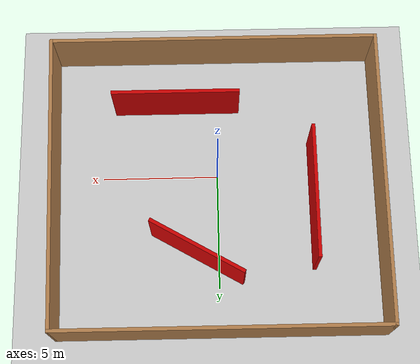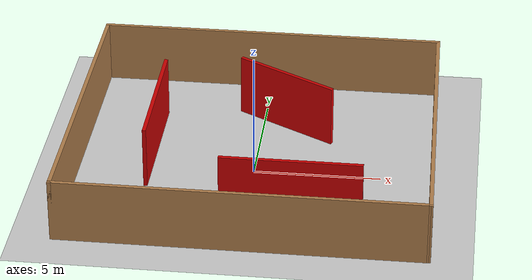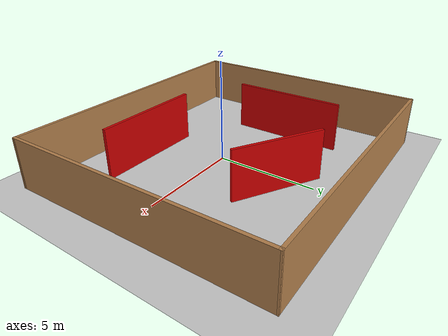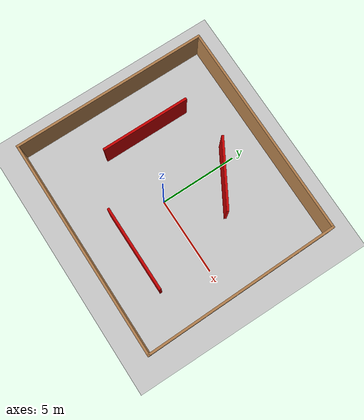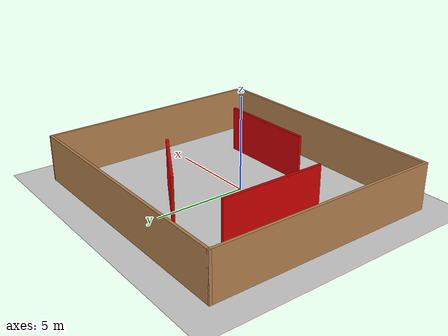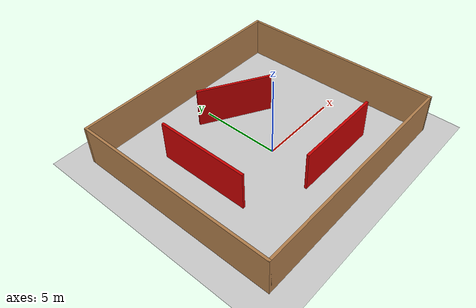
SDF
<sdf version="1.7">
 <world name="default">
  <light name="sun" type="directional">
   <pose>0 0 10 0 -0 0</pose>
   <diffuse>0.8 0.8 0.8 1</diffuse>
   <specular>0.2 0.2 0.2 1</specular>
   <attenuation>
    <range>1000</range>
    <constant>0.9</constant>
    <linear>0.01</linear>
    <quadratic>0.001</quadratic>
   </attenuation>
   <direction>-0.5 0.1 -0.9</direction>
   <spot><inner_angle>0</inner_angle><outer_angle>0</outer_angle><falloff>0</falloff></spot>
  </light>
  <model name="ground_plane">
   <static>1</static>
   <link name="link">
    <collision name="collision">
     <geometry><plane><normal>0 0 1</normal><size>100 100</size></plane></geometry>
     <surface>
      <contact><collide_bitmask>65535</collide_bitmask></contact>
      <friction><ode><mu>100</mu><mu2>50</mu2></ode></friction>
     </surface>
    </collision>
    <visual name="visual">
     <cast_shadows>0</cast_shadows>
     <geometry><plane><normal>0 0 1</normal><size>100 100</size></plane></geometry>
     <material>
      <script><uri>file://media/materials/scripts/gazebo.material</uri><name>Gazebo/Grey</name></script>
     </material>
    </visual>
   </link>
  </model>
  <gravity>0 0 -9.8</gravity>
  <magnetic_field>6e-06 2.3e-05 -4.2e-05</magnetic_field>
  <atmosphere type="adiabatic"/>
  <physics type="ode">
   <max_step_size>0.001</max_step_size>
   <real_time_factor>1</real_time_factor>
   <real_time_update_rate>1000</real_time_update_rate>
  </physics>
  <scene><ambient>0.4 0.4 0.4 1</ambient><background>0.7 0.7 0.7 1</background><shadows>1</shadows></scene>
  <spherical_coordinates>
   <surface_model>EARTH_WGS84</surface_model>
   <latitude_deg>0</latitude_deg>
   <longitude_deg>0</longitude_deg>
   <elevation>0</elevation>
   <heading_deg>0</heading_deg>
  </spherical_coordinates>
  <model name="room">
   <pose>0.077049 0.716192 0 0 -0 0</pose>
   <link name="Wall_1">
    <collision name="Wall_1_Collision">
     <geometry><box><size>14 0.15 2.5</size></box></geometry>
     <pose>0 0 1.25 0 -0 0</pose>
    </collision>
    <visual name="Wall_1_Visual">
     <pose>0 0 1.25 0 -0 0</pose>
     <geometry><box><size>14 0.15 2.5</size></box></geometry>
     <material>
      <script><uri>file://media/materials/scripts/gazebo.material</uri><name>Gazebo/Wood</name></script>
      <ambient>1 1 1 1</ambient>
     </material>
     <meta><layer>0</layer></meta>
    </visual>
    <pose>-0.125737 6.3 0 0 -0 0</pose>
   </link>
   <link name="Wall_12">
    <collision name="Wall_12_Collision">
     <geometry><box><size>5.5 0.15 2.5</size></box></geometry>
     <pose>0 0 1.25 0 -0 0</pose>
    </collision>
    <visual name="Wall_12_Visual">
     <pose>0 0 1.25 0 -0 0</pose>
     <geometry><box><size>5.5 0.15 2.5</size></box></geometry>
     <material>
      <script><uri>file://media/materials/scripts/gazebo.material</uri><name>Gazebo/Grey</name></script>
      <ambient>0.8 0 0 1</ambient>
     </material>
     <meta><layer>0</layer></meta>
    </visual>
    <pose>1.67077 -3.82932 0 0 -0 0</pose>
   </link>
   <link name="Wall_3">
    <collision name="Wall_3_Collision">
     <geometry><box><size>12.75 0.15 2.5</size></box></geometry>
     <pose>0 0 1.25 0 -0 0</pose>
    </collision>
    <visual name="Wall_3_Visual">
     <pose>0 0 1.25 0 -0 0</pose>
     <geometry><box><size>12.75 0.15 2.5</size></box></geometry>
     <material>
      <script><uri>file://media/materials/scripts/gazebo.material</uri><name>Gazebo/Wood</name></script>
      <ambient>1 1 1 1</ambient>
     </material>
     <meta><layer>0</layer></meta>
    </visual>
    <pose>-7.05074 -0 0 0 -0 -1.5708</pose>
   </link>
   <link name="Wall_4">
    <collision name="Wall_4_Collision">
     <geometry><box><size>14.25 0.15 2.5</size></box></geometry>
     <pose>0 0 1.25 0 -0 0</pose>
    </collision>
    <visual name="Wall_4_Visual">
     <pose>0 0 1.25 0 -0 0</pose>
     <geometry><box><size>14.25 0.15 2.5</size></box></geometry>
     <material>
      <script><uri>file://media/materials/scripts/gazebo.material</uri><name>Gazebo/Wood</name></script>
      <ambient>1 1 1 1</ambient>
     </material>
     <meta><layer>0</layer></meta>
    </visual>
    <pose>-0.000737 -6.3 0 0 -0 0</pose>
   </link>
   <link name="Wall_5">
    <collision name="Wall_5_Collision">
     <geometry><box><size>12.7525 0.15 2.5</size></box></geometry>
     <pose>0 0 1.25 0 -0 0</pose>
    </collision>
    <visual name="Wall_5_Visual">
     <pose>0 0 1.25 0 -0 0</pose>
     <geometry><box><size>12.7525 0.15 2.5</size></box></geometry>
     <material>
      <script><uri>file://media/materials/scripts/gazebo.material</uri><name>Gazebo/Wood</name></script>
      <ambient>1 1 1 1</ambient>
     </material>
     <meta><layer>0</layer></meta>
    </visual>
    <pose>6.92426 -0 0 0 -0 1.59064</pose>
   </link>
   <link name="Wall_7">
    <collision name="Wall_7_Collision">
     <geometry><box><size>5.75 0.15 2.5</size></box></geometry>
     <pose>0 0 1.25 0 -0 0</pose>
    </collision>
    <visual name="Wall_7_Visual">
     <pose>0 0 1.25 0 -0 0</pose>
     <geometry><box><size>5.75 0.15 2.5</size></box></geometry>
     <material>
      <script><uri>file://media/materials/scripts/gazebo.material</uri><name>Gazebo/Grey</name></script>
      <ambient>0.8 0 0 1</ambient>
     </material>
     <meta><layer>0</layer></meta>
    </visual>
    <pose>-4.15977 0.652682 0 0 -0 -1.5708</pose>
   </link>
   <link name="Wall_9">
    <collision name="Wall_9_Collision">
     <geometry><box><size>4.5 0.15 2.5</size></box></geometry>
     <pose>0 0 1.25 0 -0 0</pose>
    </collision>
    <visual name="Wall_9_Visual">
     <pose>0 0 1.25 0 -0 0</pose>
     <geometry><box><size>4.5 0.15 2.5</size></box></geometry>
     <material>
      <script><uri>file://media/materials/scripts/gazebo.material</uri><name>Gazebo/Grey</name></script>
      <ambient>0.8 0 0 1</ambient>
     </material>
     <meta><layer>0</layer></meta>
    </visual>
    <pose>0.838915 2.93156 0 0 -0 -0.523599</pose>
   </link>
   <static>1</static>
  </model>
 </world>
</sdf>
